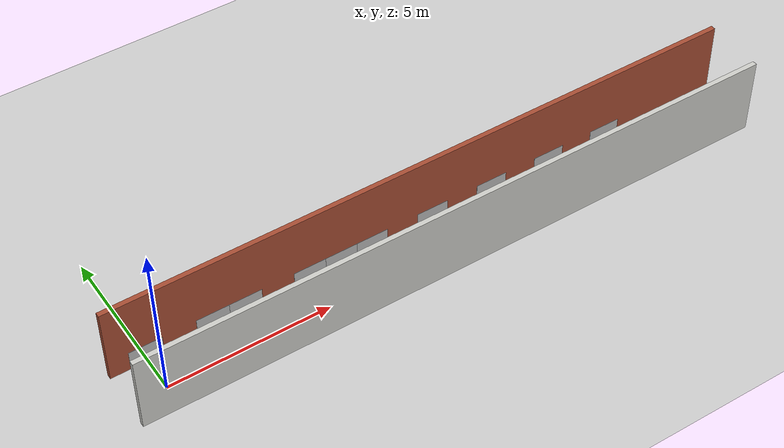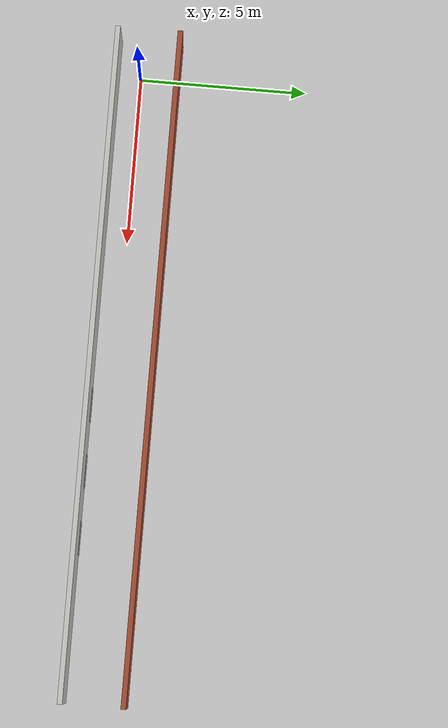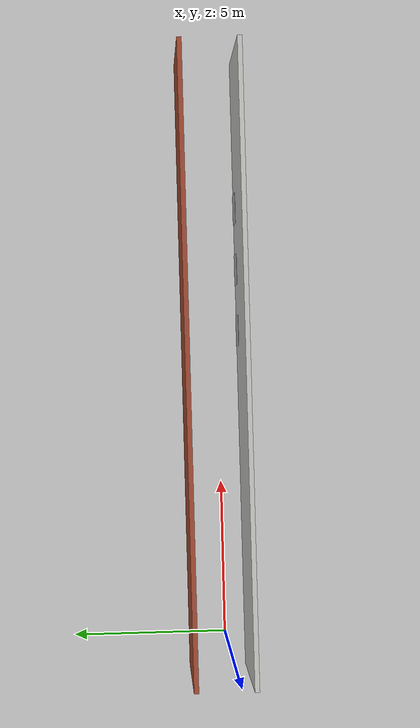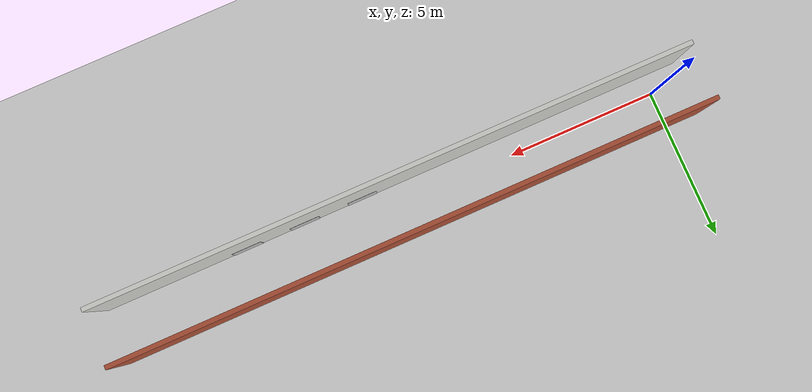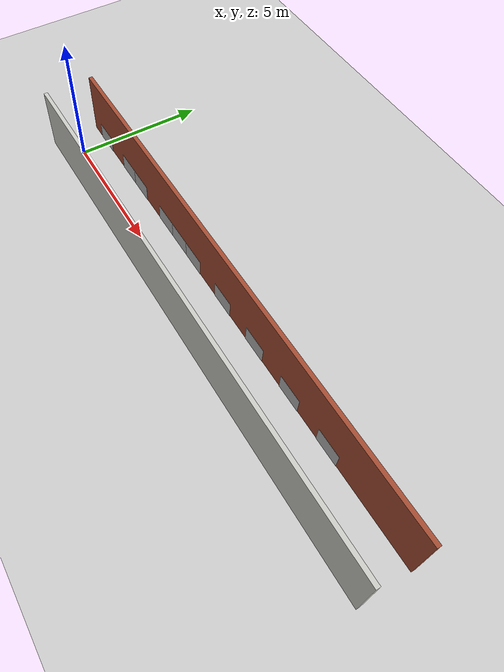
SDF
<sdf version="1.7">
 <world name="default">
  <light name="sun" type="directional">
   <pose>0 0 10 0 -0 0</pose>
   <diffuse>0.8 0.8 0.8 1</diffuse>
   <specular>0.2 0.2 0.2 1</specular>
   <attenuation>
    <range>1000</range>
    <constant>0.9</constant>
    <linear>0.01</linear>
    <quadratic>0.001</quadratic>
   </attenuation>
   <direction>-0.5 0.1 -0.9</direction>
   <spot><inner_angle>0</inner_angle><outer_angle>0</outer_angle><falloff>0</falloff></spot>
  </light>
  <model name="ground_plane">
   <static>1</static>
   <link name="link">
    <collision name="collision">
     <geometry><plane><normal>0 0 1</normal><size>100 100</size></plane></geometry>
     <surface><friction><ode><mu>100</mu><mu2>50</mu2></ode></friction></surface>
    </collision>
    <visual name="visual">
     <cast_shadows>0</cast_shadows>
     <geometry><plane><normal>0 0 1</normal><size>100 100</size></plane></geometry>
     <material>
      <script><uri>file://media/materials/scripts/gazebo.material</uri><name>Gazebo/Grey</name></script>
     </material>
    </visual>
   </link>
  </model>
  <gravity>0 0 -9.8</gravity>
  <magnetic_field>6e-06 2.3e-05 -4.2e-05</magnetic_field>
  <atmosphere type="adiabatic"/>
  <physics type="ode">
   <max_step_size>0.001</max_step_size>
   <real_time_factor>1</real_time_factor>
   <real_time_update_rate>1000</real_time_update_rate>
  </physics>
  <scene><ambient>0.4 0.4 0.4 1</ambient><background>0.7 0.7 0.7 1</background><shadows>1</shadows></scene>
  <spherical_coordinates>
   <surface_model>EARTH_WGS84</surface_model>
   <latitude_deg>0</latitude_deg>
   <longitude_deg>0</longitude_deg>
   <elevation>0</elevation>
   <heading_deg>0</heading_deg>
  </spherical_coordinates>
  <model name="hallway_20x2">
   <pose>8.89998 0.20314 0 0 -0 0</pose>
   <link name="Wall_16">
    <collision name="Wall_16_Collision">
     <geometry><box><size>20 0.15 2.5</size></box></geometry>
     <pose>0 0 1.25 0 -0 0</pose>
    </collision>
    <visual name="Wall_16_Visual">
     <pose>0 0 1.25 0 -0 0</pose>
     <geometry><box><size>20 0.15 2.5</size></box></geometry>
     <material>
      <script><uri>file://media/materials/scripts/gazebo.material</uri><name>Gazebo/Bricks</name></script>
      <ambient>1 1 1 1</ambient>
     </material>
     <meta><layer>0</layer></meta>
    </visual>
    <pose>-0 0.925 0 0 -0 0</pose>
   </link>
   <link name="Wall_18">
    <collision name="Wall_18_Collision">
     <geometry><box><size>20 0.15 2.5</size></box></geometry>
     <pose>0 0 1.25 0 -0 0</pose>
    </collision>
    <visual name="Wall_18_Visual">
     <pose>0 0 1.25 0 -0 0</pose>
     <geometry><box><size>20 0.15 2.5</size></box></geometry>
     <material>
      <script><uri>file://media/materials/scripts/gazebo.material</uri><name>Gazebo/CeilingTiled</name></script>
      <ambient>0.435294 0.796078 0.67451 1</ambient>
     </material>
     <meta><layer>0</layer></meta>
    </visual>
    <pose>-0 -0.925 0 0 -0 3.14159</pose>
   </link>
   <static>1</static>
  </model>
  <model name="Apriltag36_11_00000">
   <link name="main">
    <visual name="main_Visual">
     <geometry><box><size>1 1 0.01</size></box></geometry>
     <material>
      <script>
       <uri>model://Apriltag36_11_00000/materials/scripts</uri>
       <uri>model://Apriltag36_11_00000/materials/textures</uri>
       <name>Apriltag36_11_00000</name>
      </script>
     </material>
    </visual>
   </link>
   <static>1</static>
   <pose>0 1.05392 0.15 -1.57045 -1.57045 3.14159</pose>
  </model>
  <model name="Apriltag36_11_00002">
   <link name="main">
    <visual name="main_Visual">
     <geometry><box><size>1 1 0.01</size></box></geometry>
     <material>
      <script>
       <uri>model://Apriltag36_11_00002/materials/scripts</uri>
       <uri>model://Apriltag36_11_00002/materials/textures</uri>
       <name>Apriltag36_11_00002</name>
      </script>
     </material>
    </visual>
   </link>
   <static>1</static>
   <pose>2 1.05392 0.15 -1.57045 -1.57045 3.14159</pose>
  </model>
  <model name="Apriltag36_11_00003">
   <link name="main">
    <visual name="main_Visual">
     <geometry><box><size>1 1 0.01</size></box></geometry>
     <material>
      <script>
       <uri>model://Apriltag36_11_00003/materials/scripts</uri>
       <uri>model://Apriltag36_11_00003/materials/textures</uri>
       <name>Apriltag36_11_00003</name>
      </script>
     </material>
    </visual>
   </link>
   <static>1</static>
   <pose>3 1.05392 0.15 -1.57045 -1.57045 3.14159</pose>
  </model>
  <model name="Apriltag36_11_00005">
   <link name="main">
    <visual name="main_Visual">
     <geometry><box><size>1 1 0.01</size></box></geometry>
     <material>
      <script>
       <uri>model://Apriltag36_11_00005/materials/scripts</uri>
       <uri>model://Apriltag36_11_00005/materials/textures</uri>
       <name>Apriltag36_11_00005</name>
      </script>
     </material>
    </visual>
   </link>
   <static>1</static>
   <pose>5 1.05392 0.15 -1.57045 -1.57045 3.14159</pose>
  </model>
  <model name="Apriltag36_11_00006">
   <link name="main">
    <visual name="main_Visual">
     <geometry><box><size>1 1 0.01</size></box></geometry>
     <material>
      <script>
       <uri>model://Apriltag36_11_00006/materials/scripts</uri>
       <uri>model://Apriltag36_11_00006/materials/textures</uri>
       <name>Apriltag36_11_00006</name>
      </script>
     </material>
    </visual>
   </link>
   <static>1</static>
   <pose>6 1.05392 0.15 -1.57045 -1.57045 3.14159</pose>
  </model>
  <model name="Apriltag36_11_00007">
   <link name="main">
    <visual name="main_Visual">
     <geometry><box><size>1 1 0.01</size></box></geometry>
     <material>
      <script>
       <uri>model://Apriltag36_11_00007/materials/scripts</uri>
       <uri>model://Apriltag36_11_00007/materials/textures</uri>
       <name>Apriltag36_11_00007</name>
      </script>
     </material>
    </visual>
   </link>
   <static>1</static>
   <pose>7 1.05392 0.15 -1.57045 -1.57045 3.14159</pose>
  </model>
  <model name="Apriltag36_11_00009">
   <link name="main">
    <visual name="main_Visual">
     <geometry><box><size>1 1 0.01</size></box></geometry>
     <material>
      <script>
       <uri>model://Apriltag36_11_00009/materials/scripts</uri>
       <uri>model://Apriltag36_11_00009/materials/textures</uri>
       <name>Apriltag36_11_00009</name>
      </script>
     </material>
    </visual>
   </link>
   <static>1</static>
   <pose>9 1.05392 0.15 -1.57045 -1.57045 3.14159</pose>
  </model>
  <model name="Apriltag36_11_00010">
   <link name="main">
    <visual name="main_Visual">
     <geometry><box><size>1 1 0.01</size></box></geometry>
     <material>
      <script>
       <uri>model://Apriltag36_11_00010/materials/scripts</uri>
       <uri>model://Apriltag36_11_00010/materials/textures</uri>
       <name>Apriltag36_11_00010</name>
      </script>
     </material>
    </visual>
   </link>
   <static>1</static>
   <pose>10 -0.641178 0.15 -0 -1.57045 -1.57045</pose>
  </model>
  <model name="Apriltag36_11_00011">
   <link name="main">
    <visual name="main_Visual">
     <geometry><box><size>1 1 0.01</size></box></geometry>
     <material>
      <script>
       <uri>model://Apriltag36_11_00011/materials/scripts</uri>
       <uri>model://Apriltag36_11_00011/materials/textures</uri>
       <name>Apriltag36_11_00011</name>
      </script>
     </material>
    </visual>
   </link>
   <static>1</static>
   <pose>11 1.05392 0.15 -1.57045 -1.57045 3.14159</pose>
  </model>
  <model name="Apriltag36_11_00012">
   <link name="main">
    <visual name="main_Visual">
     <geometry><box><size>1 1 0.01</size></box></geometry>
     <material>
      <script>
       <uri>model://Apriltag36_11_00012/materials/scripts</uri>
       <uri>model://Apriltag36_11_00012/materials/textures</uri>
       <name>Apriltag36_11_00012</name>
      </script>
     </material>
    </visual>
   </link>
   <static>1</static>
   <pose>12 -0.641178 0.15 -0 -1.57045 -1.57045</pose>
  </model>
  <model name="Apriltag36_11_00013">
   <link name="main">
    <visual name="main_Visual">
     <geometry><box><size>1 1 0.01</size></box></geometry>
     <material>
      <script>
       <uri>model://Apriltag36_11_00013/materials/scripts</uri>
       <uri>model://Apriltag36_11_00013/materials/textures</uri>
       <name>Apriltag36_11_00013</name>
      </script>
     </material>
    </visual>
   </link>
   <static>1</static>
   <pose>13 1.05392 0.15 -1.57045 -1.57045 3.14159</pose>
  </model>
  <model name="Apriltag36_11_00014">
   <link name="main">
    <visual name="main_Visual">
     <geometry><box><size>1 1 0.01</size></box></geometry>
     <material>
      <script>
       <uri>model://Apriltag36_11_00014/materials/scripts</uri>
       <uri>model://Apriltag36_11_00014/materials/textures</uri>
       <name>Apriltag36_11_00014</name>
      </script>
     </material>
    </visual>
   </link>
   <static>1</static>
   <pose>14 -0.641178 0.15 -0 -1.57045 -1.57045</pose>
  </model>
  <model name="Apriltag36_11_00015">
   <link name="main">
    <visual name="main_Visual">
     <geometry><box><size>1 1 0.01</size></box></geometry>
     <material>
      <script>
       <uri>model://Apriltag36_11_00015/materials/scripts</uri>
       <uri>model://Apriltag36_11_00015/materials/textures</uri>
       <name>Apriltag36_11_00015</name>
      </script>
     </material>
    </visual>
   </link>
   <static>1</static>
   <pose>15 1.05392 0.15 -1.57045 -1.57045 3.14159</pose>
  </model>
 </world>
</sdf>
